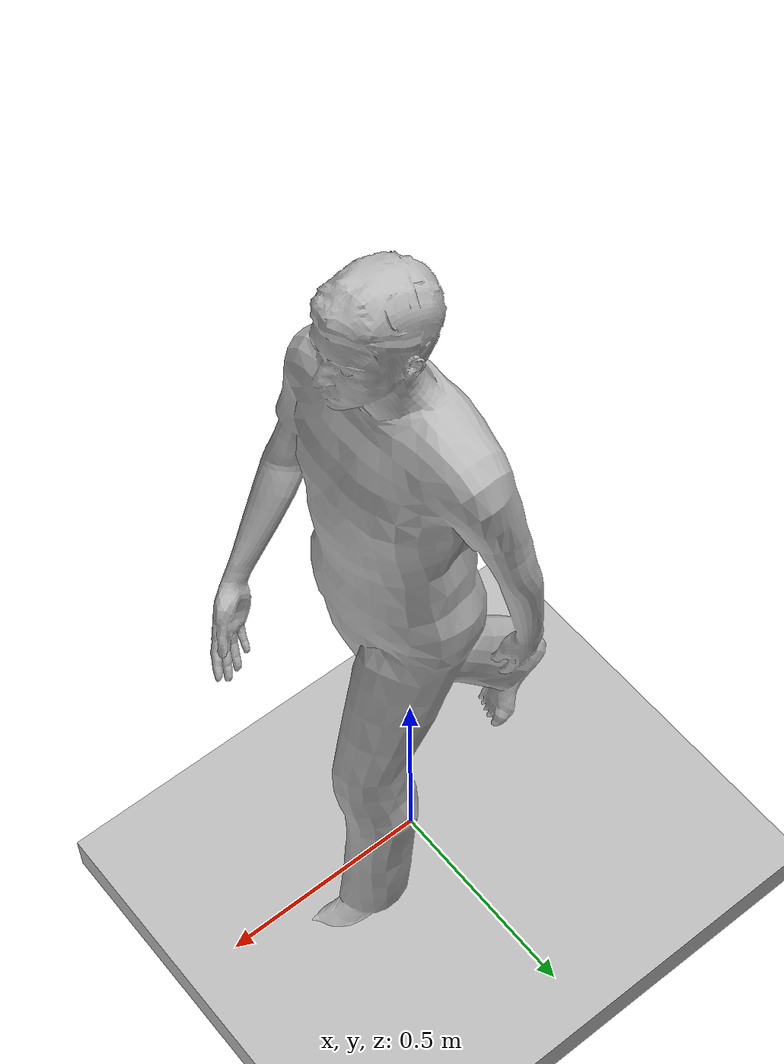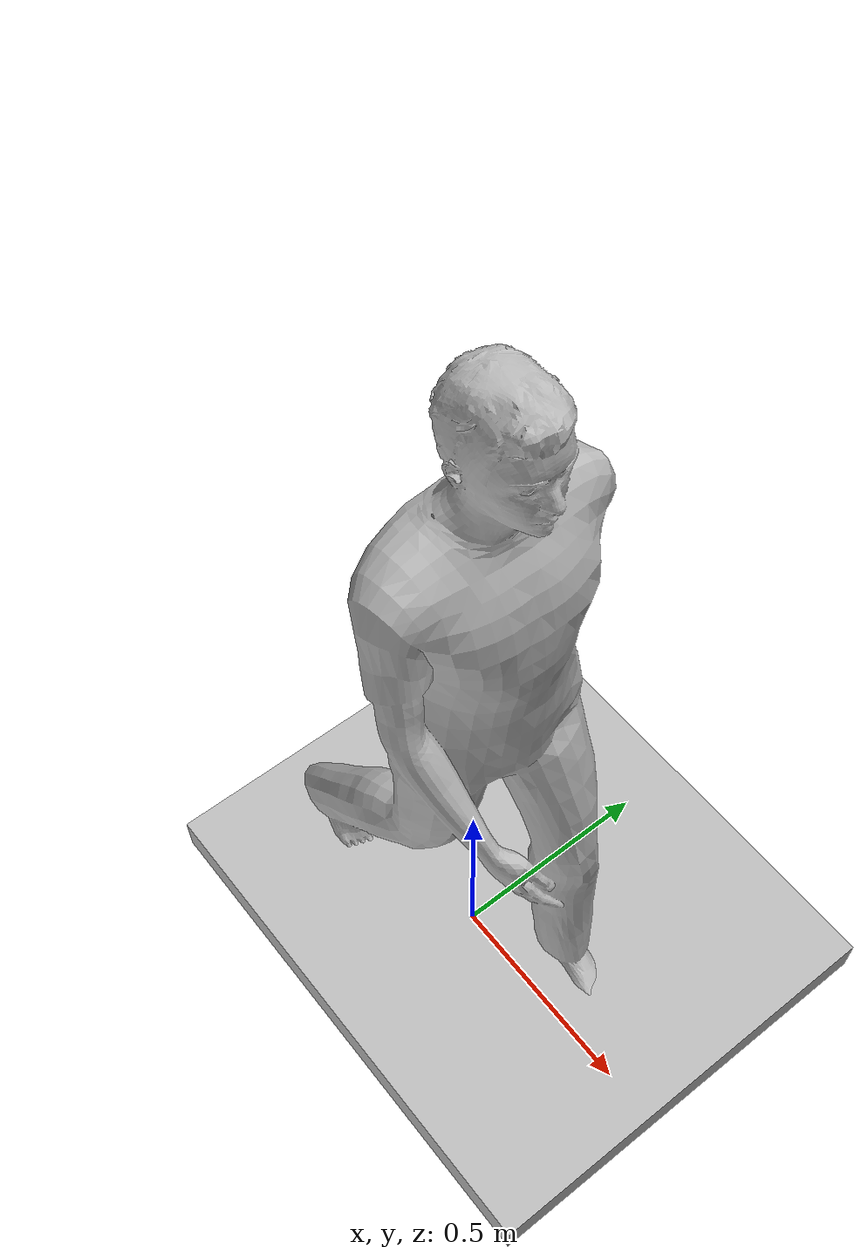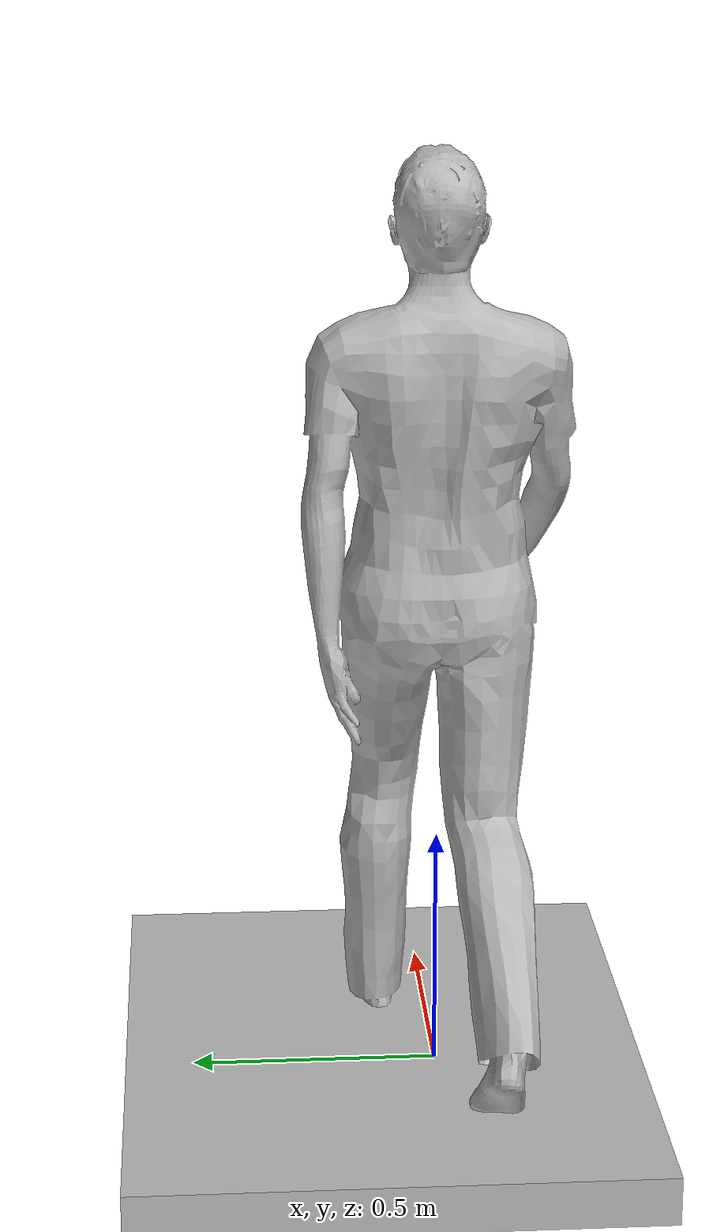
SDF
<sdf version="1.4">
 <world name="Wannsee_final_scenario_world">
  <physics type="ode">
   <ode>
    <solver><type>quick</type><iters>10</iters><sor>1.3</sor></solver>
    <constraints>
     <cfm>0</cfm>
     <erp>0.2</erp>
     <contact_max_correcting_vel>100</contact_max_correcting_vel>
     <contact_surface_layer>0.001</contact_surface_layer>
    </constraints>
   </ode>
   <max_step_size>0.004</max_step_size>
   <real_time_factor>1</real_time_factor>
   <real_time_update_rate>250</real_time_update_rate>
   <gravity>0 0 -9.8</gravity>
   <magnetic_field>6e-06 2.3e-05 -4.2e-05</magnetic_field>
  </physics>
  <include><uri>model://Wannsee_final_scenario</uri></include>
  <include><uri>model://sun</uri></include>
  <include><uri>model://target</uri><name>target</name></include>
 </world>
</sdf>

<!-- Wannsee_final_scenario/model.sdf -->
<sdf version="1.5">
  <model name="Wannsee_final_scenario">
    <static>true</static>
    <link name="floor">
      <collision name="collision">
        <geometry>
          <box>
            <size>1148.55 1148.55 .1</size>
          </box>
        </geometry>
      </collision>
      <visual name="visual">
        <cast_shadows>false</cast_shadows>
        <geometry>
          <box>
            <size>1148.55 1148.55 .1</size>
          </box>
        </geometry>
        <material>
          <script>
            <uri>model://Wannsee_final_scenario/materials/scripts</uri>
            <uri>model://Wannsee_final_scenario/materials/textures</uri>
            <name>Wannsee_final_scenario</name>
          </script>
        </material>
      </visual>
    </link>
  </model>
</sdf>

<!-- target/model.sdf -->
<sdf version="1.6">
  <model name="target">
    <link name="link">
      <inertial>
        <pose>0 0 0.95 0 0 1.57</pose>
        <mass>80.0</mass>
        <inertia>
          <ixx>27.82</ixx>
          <ixy>0</ixy>
          <ixz>0</ixz>
          <iyy>24.88</iyy>
          <iyz>0</iyz>
          <izz>4.57</izz>
        </inertia>
      </inertial>

      <collision name="bottom">
        <pose>0 0 0.01 0 0 1.57</pose>
        <geometry>
          <box>
            <size>0.35 0.75 0.02</size>
          </box>
        </geometry>
      </collision>

      <collision name="person">
        <pose>0 0 -0.02 0 0 1.57 </pose>
        <geometry>
          <mesh>
            <uri>model://target/meshes/walking.dae</uri>
          </mesh>
        </geometry>
      </collision>

      <visual name="visual">
        <pose>0 0 -0.02 0 0 1.57</pose>
        <geometry>
          <mesh>
            <uri>model://target/meshes/walking.dae</uri>
          </mesh>
        </geometry>
      </visual>
    </link>
       <plugin name="target_plugin" filename="libmultidrone_simulator.so">>
       </plugin>
  </model>
</sdf>
